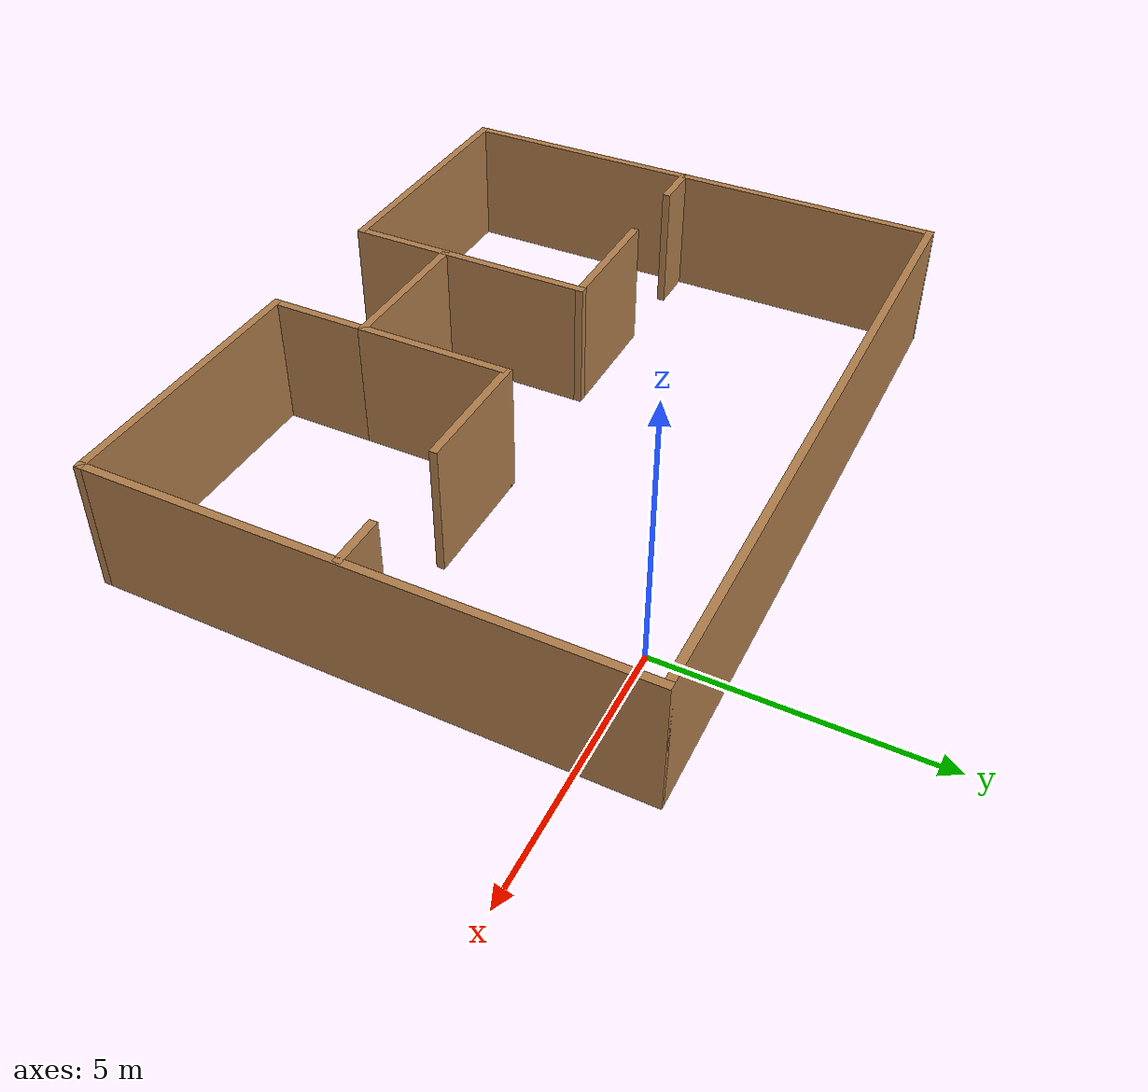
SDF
<?xml version='1.0'?>
<sdf version='1.7'>
  <model name='Building'>
    <pose>-3.97997 -3.63569 0 0 -0 0</pose>
    <link name='Wall_0'>
      <collision name='Wall_0_Collision'>
        <geometry>
          <box>
            <size>13 0.15 2.5</size>
          </box>
        </geometry>
        <pose>0 0 1.25 0 -0 0</pose>
      </collision>
      <visual name='Wall_0_Visual'>
        <pose>0 0 1.25 0 -0 0</pose>
        <geometry>
          <box>
            <size>13 0.15 2.5</size>
          </box>
        </geometry>
        <material>
          <script>
            <uri>file://media/materials/scripts/gazebo.material</uri>
            <name>Gazebo/Wood</name>
          </script>
          <ambient>0.756863 0.490196 0.0666667 1</ambient>
        </material>
        <meta>
          <layer>0</layer>
        </meta>
      </visual>
      <pose>0 4.925 0 0 -0 0</pose>
    </link>
    <link name='Wall_1'>
      <collision name='Wall_1_Collision'>
        <geometry>
          <box>
            <size>10 0.15 2.5</size>
          </box>
        </geometry>
        <pose>0 0 1.25 0 -0 0</pose>
      </collision>
      <visual name='Wall_1_Visual'>
        <pose>0 0 1.25 0 -0 0</pose>
        <geometry>
          <box>
            <size>10 0.15 2.5</size>
          </box>
        </geometry>
        <material>
          <script>
            <uri>file://media/materials/scripts/gazebo.material</uri>
            <name>Gazebo/Wood</name>
          </script>
          <ambient>0.756863 0.490196 0.0666667 1</ambient>
        </material>
        <meta>
          <layer>0</layer>
        </meta>
      </visual>
      <pose>6.425 -0 0 0 -0 -1.5708</pose>
    </link>
    <link name='Wall_10'>
      <collision name='Wall_10_Collision'>
        <geometry>
          <box>
            <size>3 0.15 2.5</size>
          </box>
        </geometry>
        <pose>0 0 1.25 0 -0 0</pose>
      </collision>
      <visual name='Wall_10_Visual'>
        <pose>0 0 1.25 0 -0 0</pose>
        <geometry>
          <box>
            <size>3 0.15 2.5</size>
          </box>
        </geometry>
        <material>
          <script>
            <uri>file://media/materials/scripts/gazebo.material</uri>
            <name>Gazebo/Wood</name>
          </script>
          <ambient>0.756863 0.490196 0.0666667 1</ambient>
        </material>
        <meta>
          <layer>0</layer>
        </meta>
      </visual>
      <pose>-0.149999 -3.075 0 0 -0 0</pose>
    </link>
    <link name='Wall_13'>
      <collision name='Wall_13_Collision'>
        <geometry>
          <box>
            <size>2 0.15 2.5</size>
          </box>
        </geometry>
        <pose>0 0 1.25 0 -0 0</pose>
      </collision>
      <visual name='Wall_13_Visual'>
        <pose>0 0 1.25 0 -0 0</pose>
        <geometry>
          <box>
            <size>2 0.15 2.5</size>
          </box>
        </geometry>
        <material>
          <script>
            <uri>file://media/materials/scripts/gazebo.material</uri>
            <name>Gazebo/Wood</name>
          </script>
          <ambient>0.756863 0.490196 0.0666667 1</ambient>
        </material>
        <meta>
          <layer>0</layer>
        </meta>
      </visual>
      <pose>1.275 -4 0 0 -0 -1.5708</pose>
    </link>
    <link name='Wall_14'>
      <collision name='Wall_14_Collision'>
        <geometry>
          <box>
            <size>5.3 0.15 2.5</size>
          </box>
        </geometry>
        <pose>0 0 1.25 0 -0 0</pose>
      </collision>
      <visual name='Wall_14_Visual'>
        <pose>0 0 1.25 0 -0 0</pose>
        <geometry>
          <box>
            <size>5.3 0.15 2.5</size>
          </box>
        </geometry>
        <material>
          <script>
            <uri>file://media/materials/scripts/gazebo.material</uri>
            <name>Gazebo/Wood</name>
          </script>
          <ambient>0.756863 0.490196 0.0666667 1</ambient>
        </material>
        <meta>
          <layer>0</layer>
        </meta>
      </visual>
      <pose>3.85 -4.925 0 0 -0 0</pose>
    </link>
    <link name='Wall_17'>
      <collision name='Wall_17_Collision'>
        <geometry>
          <box>
            <size>3 0.15 2.5</size>
          </box>
        </geometry>
        <pose>0 0 1.25 0 -0 0</pose>
      </collision>
      <visual name='Wall_17_Visual'>
        <pose>0 0 1.25 0 -0 0</pose>
        <geometry>
          <box>
            <size>3 0.15 2.5</size>
          </box>
        </geometry>
        <material>
          <script>
            <uri>file://media/materials/scripts/gazebo.material</uri>
            <name>Gazebo/Wood</name>
          </script>
          <ambient>0.756863 0.490196 0.0666667 1</ambient>
        </material>
        <meta>
          <layer>0</layer>
        </meta>
      </visual>
      <pose>1.275 -1.65 0 0 -0 1.5708</pose>
    </link>
    <link name='Wall_21'>
      <collision name='Wall_21_Collision'>
        <geometry>
          <box>
            <size>2.5 0.15 2.5</size>
          </box>
        </geometry>
        <pose>0 0 1.25 0 -0 0</pose>
      </collision>
      <visual name='Wall_21_Visual'>
        <pose>0 0 1.25 0 -0 0</pose>
        <geometry>
          <box>
            <size>2.5 0.15 2.5</size>
          </box>
        </geometry>
        <material>
          <script>
            <uri>file://media/materials/scripts/gazebo.material</uri>
            <name>Gazebo/Wood</name>
          </script>
          <ambient>0.756863 0.490196 0.0666667 1</ambient>
        </material>
        <meta>
          <layer>0</layer>
        </meta>
      </visual>
      <pose>2.45 -0.225 0 0 -0 0</pose>
    </link>
    <link name='Wall_25'>
      <collision name='Wall_25_Collision'>
        <geometry>
          <box>
            <size>3 0.15 2.5</size>
          </box>
        </geometry>
        <pose>0 0 1.25 0 -0 0</pose>
      </collision>
      <visual name='Wall_25_Visual'>
        <pose>0 0 1.25 0 -0 0</pose>
        <geometry>
          <box>
            <size>3 0.15 2.5</size>
          </box>
        </geometry>
        <material>
          <script>
            <uri>file://media/materials/scripts/gazebo.material</uri>
            <name>Gazebo/Wood</name>
          </script>
          <ambient>0.756863 0.490196 0.0666667 1</ambient>
        </material>
        <meta>
          <layer>0</layer>
        </meta>
      </visual>
      <pose>-1.575 -1.65 0 0 -0 1.5708</pose>
    </link>
    <link name='Wall_26'>
      <collision name='Wall_26_Collision'>
        <geometry>
          <box>
            <size>2.5 0.15 2.5</size>
          </box>
        </geometry>
        <pose>0 0 1.25 0 -0 0</pose>
      </collision>
      <visual name='Wall_26_Visual'>
        <pose>0 0 1.25 0 -0 0</pose>
        <geometry>
          <box>
            <size>2.5 0.15 2.5</size>
          </box>
        </geometry>
        <material>
          <script>
            <uri>file://media/materials/scripts/gazebo.material</uri>
            <name>Gazebo/Wood</name>
          </script>
          <ambient>0.756863 0.490196 0.0666667 1</ambient>
        </material>
        <meta>
          <layer>0</layer>
        </meta>
      </visual>
      <pose>-2.75 -0.225 0 0 -0 3.14159</pose>
    </link>
    <link name='Wall_29'>
      <collision name='Wall_29_Collision'>
        <geometry>
          <box>
            <size>1 0.15 2.5</size>
          </box>
        </geometry>
        <pose>0 0 1.25 0 -0 0</pose>
      </collision>
      <visual name='Wall_29_Visual'>
        <pose>0 0 1.25 0 -0 0</pose>
        <geometry>
          <box>
            <size>1 0.15 2.5</size>
          </box>
        </geometry>
        <material>
          <script>
            <uri>file://media/materials/scripts/gazebo.material</uri>
            <name>Gazebo/Wood</name>
          </script>
          <ambient>0.756863 0.490196 0.0666667 1</ambient>
        </material>
        <meta>
          <layer>0</layer>
        </meta>
      </visual>
      <pose>-6 -0.209995 0 0 -0 0</pose>
    </link>
    <link name='Wall_3'>
      <collision name='Wall_3_Collision'>
        <geometry>
          <box>
            <size>10 0.15 2.5</size>
          </box>
        </geometry>
        <pose>0 0 1.25 0 -0 0</pose>
      </collision>
      <visual name='Wall_3_Visual'>
        <pose>0 0 1.25 0 -0 0</pose>
        <geometry>
          <box>
            <size>10 0.15 2.5</size>
          </box>
        </geometry>
        <material>
          <script>
            <uri>file://media/materials/scripts/gazebo.material</uri>
            <name>Gazebo/Wood</name>
          </script>
          <ambient>0.756863 0.490196 0.0666667 1</ambient>
        </material>
        <meta>
          <layer>0</layer>
        </meta>
      </visual>
      <pose>-6.425 -0 0 0 -0 -1.5708</pose>
    </link>
    <link name='Wall_31'>
      <collision name='Wall_31_Collision'>
        <geometry>
          <box>
            <size>1 0.15 2.5</size>
          </box>
        </geometry>
        <pose>0 0 1.25 0 -0 0</pose>
      </collision>
      <visual name='Wall_31_Visual'>
        <pose>0 0 1.25 0 -0 0</pose>
        <geometry>
          <box>
            <size>1 0.15 2.5</size>
          </box>
        </geometry>
        <material>
          <script>
            <uri>file://media/materials/scripts/gazebo.material</uri>
            <name>Gazebo/Wood</name>
          </script>
          <ambient>0.756863 0.490196 0.0666667 1</ambient>
        </material>
        <meta>
          <layer>0</layer>
        </meta>
      </visual>
      <pose>5.96436 -0.186864 0 0 -0 3.14159</pose>
    </link>
    <link name='Wall_5'>
      <collision name='Wall_5_Collision'>
        <geometry>
          <box>
            <size>5 0.15 2.5</size>
          </box>
        </geometry>
        <pose>0 0 1.25 0 -0 0</pose>
      </collision>
      <visual name='Wall_5_Visual'>
        <pose>0 0 1.25 0 -0 0</pose>
        <geometry>
          <box>
            <size>5 0.15 2.5</size>
          </box>
        </geometry>
        <material>
          <script>
            <uri>file://media/materials/scripts/gazebo.material</uri>
            <name>Gazebo/Wood</name>
          </script>
          <ambient>0.756863 0.490196 0.0666667 1</ambient>
        </material>
        <meta>
          <layer>0</layer>
        </meta>
      </visual>
      <pose>-4 -4.925 0 0 -0 0</pose>
    </link>
    <link name='Wall_9'>
      <collision name='Wall_9_Collision'>
        <geometry>
          <box>
            <size>2 0.15 2.5</size>
          </box>
        </geometry>
        <pose>0 0 1.25 0 -0 0</pose>
      </collision>
      <visual name='Wall_9_Visual'>
        <pose>0 0 1.25 0 -0 0</pose>
        <geometry>
          <box>
            <size>2 0.15 2.5</size>
          </box>
        </geometry>
        <material>
          <script>
            <uri>file://media/materials/scripts/gazebo.material</uri>
            <name>Gazebo/Wood</name>
          </script>
          <ambient>0.756863 0.490196 0.0666667 1</ambient>
        </material>
        <meta>
          <layer>0</layer>
        </meta>
      </visual>
      <pose>-1.575 -4 0 0 -0 1.5708</pose>
    </link>
    <static>1</static>
  </model>
</sdf>
